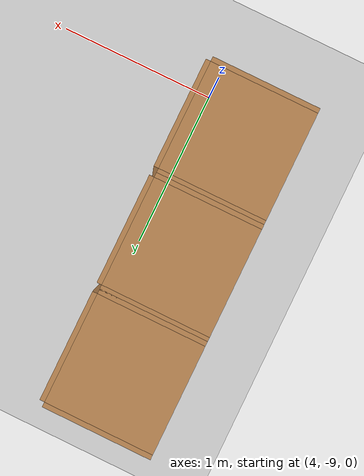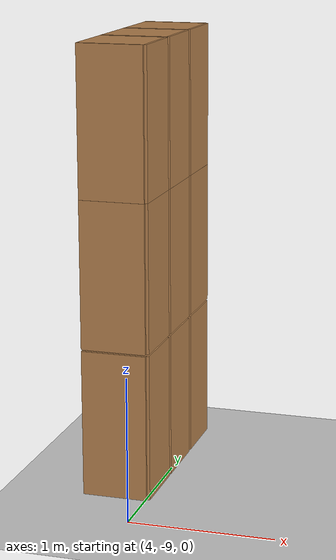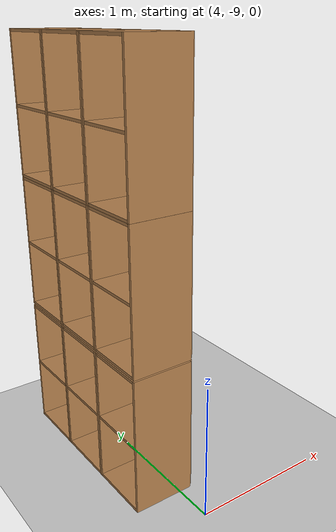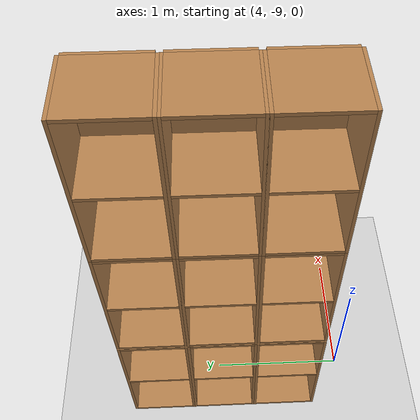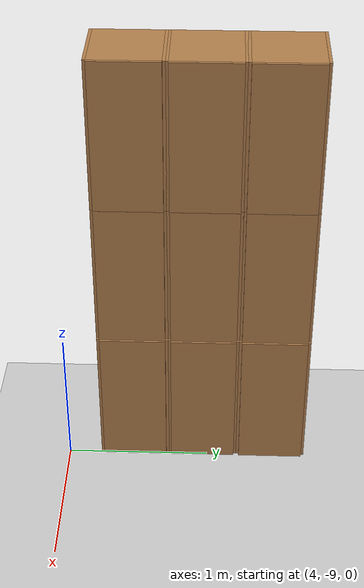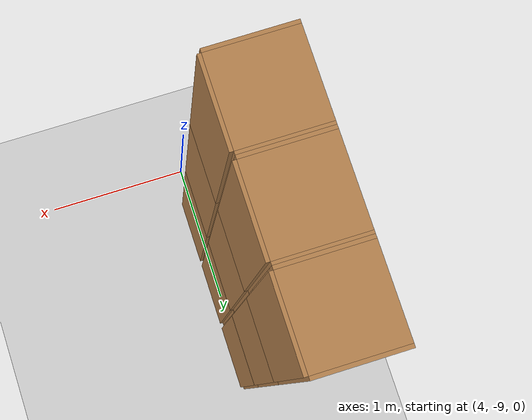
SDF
<sdf version="1.6">
 <world name="default">
  <model name="ground_plane">
   <static>1</static>
   <link name="link">
    <collision name="collision">
     <geometry><plane><normal>0 0 1</normal><size>100 100</size></plane></geometry>
     <surface>
      <contact><collide_bitmask>65535</collide_bitmask></contact>
      <friction><ode><mu>100</mu><mu2>50</mu2></ode></friction>
     </surface>
    </collision>
    <visual name="visual">
     <cast_shadows>0</cast_shadows>
     <geometry><plane><normal>0 0 1</normal><size>100 100</size></plane></geometry>
     <material>
      <script><uri>file://media/materials/scripts/gazebo.material</uri><name>Gazebo/Grey</name></script>
     </material>
    </visual>
   </link>
  </model>
  <model name="Locker18_clone">
   <model name="Locker18">
    <model name="Locker3">
     <model name="cabinet">
      <static>1</static>
      <link name="cabinet_bottom_plate">
       <inertial>
        <pose>0 0 -1 0 -0 0</pose>
        <inertia><ixx>2.05</ixx><ixy>0</ixy><ixz>0</ixz><iyy>2.05</iyy><iyz>0</iyz><izz>2.05</izz></inertia>
        <mass>25</mass>
       </inertial>
       <collision name="cabinet_bottom_plate_geom">
        <pose>0 0 0.01 0 -0 0</pose>
        <geometry><box><size>0.45 0.45 0.02</size></box></geometry>
       </collision>
       <visual name="cabinet_bottom_plate_geom_visual">
        <pose>0 0 0.01 0 -0 0</pose>
        <geometry><box><size>0.45 0.45 0.02</size></box></geometry>
        <material>
         <script><uri>file://media/materials/scripts/gazebo.material</uri><name>Gazebo/Wood</name></script>
        </material>
       </visual>
       <collision name="cabinet_bottom_plate_geom_cabinet_back_plate">
        <pose>0.235 0 0.51 0 -0 0</pose>
        <geometry><box><size>0.02 0.45 1.02</size></box></geometry>
       </collision>
       <visual name="cabinet_bottom_plate_geom_cabinet_back_plate_visual">
        <pose>0.235 0 0.51 0 -0 0</pose>
        <geometry><box><size>0.02 0.45 1.02</size></box></geometry>
        <material>
         <script><uri>file://media/materials/scripts/gazebo.material</uri><name>Gazebo/Wood</name></script>
        </material>
       </visual>
       <collision name="cabinet_bottom_plate_geom_cabinet_left_plate">
        <pose>0 0.235 0.51 0 -0 0</pose>
        <geometry><box><size>0.45 0.02 1.02</size></box></geometry>
       </collision>
       <visual name="cabinet_bottom_plate_geom_cabinet_left_plate_visual">
        <pose>0 0.235 0.51 0 -0 0</pose>
        <geometry><box><size>0.45 0.02 1.02</size></box></geometry>
        <material>
         <script><uri>file://media/materials/scripts/gazebo.material</uri><name>Gazebo/Wood</name></script>
        </material>
       </visual>
       <collision name="cabinet_bottom_plate_geom_cabinet_middle_plate">
        <pose>0 0 0.51 0 -0 0</pose>
        <geometry><box><size>0.45 0.45 0.02</size></box></geometry>
       </collision>
       <visual name="cabinet_bottom_plate_geom_cabinet_middle_plate_visual">
        <pose>0 0 0.51 0 -0 0</pose>
        <geometry><box><size>0.45 0.45 0.02</size></box></geometry>
        <material>
         <script><uri>file://media/materials/scripts/gazebo.material</uri><name>Gazebo/Wood</name></script>
        </material>
       </visual>
       <collision name="cabinet_bottom_plate_geom_cabinet_right_plate">
        <pose>0 -0.235 0.51 0 -0 0</pose>
        <geometry><box><size>0.45 0.02 1.02</size></box></geometry>
       </collision>
       <visual name="cabinet_bottom_plate_geom_cabinet_right_plate_visual">
        <pose>0 -0.235 0.51 0 -0 0</pose>
        <geometry><box><size>0.45 0.02 1.02</size></box></geometry>
        <material>
         <script><uri>file://media/materials/scripts/gazebo.material</uri><name>Gazebo/Wood</name></script>
        </material>
       </visual>
       <collision name="cabinet_bottom_plate_geom_cabinet_top_plate">
        <pose>0 0 1.01 0 -0 0</pose>
        <geometry><box><size>0.45 0.45 0.02</size></box></geometry>
       </collision>
       <visual name="cabinet_bottom_plate_geom_cabinet_top_plate_visual">
        <pose>0 0 1.01 0 -0 0</pose>
        <geometry><box><size>0.45 0.45 0.02</size></box></geometry>
        <material>
         <script><uri>file://media/materials/scripts/gazebo.material</uri><name>Gazebo/Wood</name></script>
        </material>
       </visual>
      </link>
      <pose>-0.676968 1.45758 0 0 -0 0</pose>
     </model>
     <model name="cabinet_clone">
      <static>1</static>
      <link name="cabinet_bottom_plate">
       <inertial>
        <pose>0 0 -1 0 -0 0</pose>
        <inertia><ixx>2.05</ixx><ixy>0</ixy><ixz>0</ixz><iyy>2.05</iyy><iyz>0</iyz><izz>2.05</izz></inertia>
        <mass>25</mass>
       </inertial>
       <collision name="cabinet_bottom_plate_geom">
        <pose>0 0 0.01 0 -0 0</pose>
        <geometry><box><size>0.45 0.45 0.02</size></box></geometry>
       </collision>
       <visual name="cabinet_bottom_plate_geom_visual">
        <pose>0 0 0.01 0 -0 0</pose>
        <geometry><box><size>0.45 0.45 0.02</size></box></geometry>
        <material>
         <script><uri>file://media/materials/scripts/gazebo.material</uri><name>Gazebo/Wood</name></script>
        </material>
       </visual>
       <collision name="cabinet_bottom_plate_geom_cabinet_back_plate">
        <pose>0.235 0 0.51 0 -0 0</pose>
        <geometry><box><size>0.02 0.45 1.02</size></box></geometry>
       </collision>
       <visual name="cabinet_bottom_plate_geom_cabinet_back_plate_visual">
        <pose>0.235 0 0.51 0 -0 0</pose>
        <geometry><box><size>0.02 0.45 1.02</size></box></geometry>
        <material>
         <script><uri>file://media/materials/scripts/gazebo.material</uri><name>Gazebo/Wood</name></script>
        </material>
       </visual>
       <collision name="cabinet_bottom_plate_geom_cabinet_left_plate">
        <pose>0 0.235 0.51 0 -0 0</pose>
        <geometry><box><size>0.45 0.02 1.02</size></box></geometry>
       </collision>
       <visual name="cabinet_bottom_plate_geom_cabinet_left_plate_visual">
        <pose>0 0.235 0.51 0 -0 0</pose>
        <geometry><box><size>0.45 0.02 1.02</size></box></geometry>
        <material>
         <script><uri>file://media/materials/scripts/gazebo.material</uri><name>Gazebo/Wood</name></script>
        </material>
       </visual>
       <collision name="cabinet_bottom_plate_geom_cabinet_middle_plate">
        <pose>0 0 0.51 0 -0 0</pose>
        <geometry><box><size>0.45 0.45 0.02</size></box></geometry>
       </collision>
       <visual name="cabinet_bottom_plate_geom_cabinet_middle_plate_visual">
        <pose>0 0 0.51 0 -0 0</pose>
        <geometry><box><size>0.45 0.45 0.02</size></box></geometry>
        <material>
         <script><uri>file://media/materials/scripts/gazebo.material</uri><name>Gazebo/Wood</name></script>
        </material>
       </visual>
       <collision name="cabinet_bottom_plate_geom_cabinet_right_plate">
        <pose>0 -0.235 0.51 0 -0 0</pose>
        <geometry><box><size>0.45 0.02 1.02</size></box></geometry>
       </collision>
       <visual name="cabinet_bottom_plate_geom_cabinet_right_plate_visual">
        <pose>0 -0.235 0.51 0 -0 0</pose>
        <geometry><box><size>0.45 0.02 1.02</size></box></geometry>
        <material>
         <script><uri>file://media/materials/scripts/gazebo.material</uri><name>Gazebo/Wood</name></script>
        </material>
       </visual>
       <collision name="cabinet_bottom_plate_geom_cabinet_top_plate">
        <pose>0 0 1.01 0 -0 0</pose>
        <geometry><box><size>0.45 0.45 0.02</size></box></geometry>
       </collision>
       <visual name="cabinet_bottom_plate_geom_cabinet_top_plate_visual">
        <pose>0 0 1.01 0 -0 0</pose>
        <geometry><box><size>0.45 0.45 0.02</size></box></geometry>
        <material>
         <script><uri>file://media/materials/scripts/gazebo.material</uri><name>Gazebo/Wood</name></script>
        </material>
       </visual>
      </link>
      <pose>-0.676968 0.970971 0 0 -0 0</pose>
     </model>
     <model name="cabinet_clone_0">
      <static>1</static>
      <link name="cabinet_bottom_plate">
       <inertial>
        <pose>0 0 -1 0 -0 0</pose>
        <inertia><ixx>2.05</ixx><ixy>0</ixy><ixz>0</ixz><iyy>2.05</iyy><iyz>0</iyz><izz>2.05</izz></inertia>
        <mass>25</mass>
       </inertial>
       <collision name="cabinet_bottom_plate_geom">
        <pose>0 0 0.01 0 -0 0</pose>
        <geometry><box><size>0.45 0.45 0.02</size></box></geometry>
       </collision>
       <visual name="cabinet_bottom_plate_geom_visual">
        <pose>0 0 0.01 0 -0 0</pose>
        <geometry><box><size>0.45 0.45 0.02</size></box></geometry>
        <material>
         <script><uri>file://media/materials/scripts/gazebo.material</uri><name>Gazebo/Wood</name></script>
        </material>
       </visual>
       <collision name="cabinet_bottom_plate_geom_cabinet_back_plate">
        <pose>0.235 0 0.51 0 -0 0</pose>
        <geometry><box><size>0.02 0.45 1.02</size></box></geometry>
       </collision>
       <visual name="cabinet_bottom_plate_geom_cabinet_back_plate_visual">
        <pose>0.235 0 0.51 0 -0 0</pose>
        <geometry><box><size>0.02 0.45 1.02</size></box></geometry>
        <material>
         <script><uri>file://media/materials/scripts/gazebo.material</uri><name>Gazebo/Wood</name></script>
        </material>
       </visual>
       <collision name="cabinet_bottom_plate_geom_cabinet_left_plate">
        <pose>0 0.235 0.51 0 -0 0</pose>
        <geometry><box><size>0.45 0.02 1.02</size></box></geometry>
       </collision>
       <visual name="cabinet_bottom_plate_geom_cabinet_left_plate_visual">
        <pose>0 0.235 0.51 0 -0 0</pose>
        <geometry><box><size>0.45 0.02 1.02</size></box></geometry>
        <material>
         <script><uri>file://media/materials/scripts/gazebo.material</uri><name>Gazebo/Wood</name></script>
        </material>
       </visual>
       <collision name="cabinet_bottom_plate_geom_cabinet_middle_plate">
        <pose>0 0 0.51 0 -0 0</pose>
        <geometry><box><size>0.45 0.45 0.02</size></box></geometry>
       </collision>
       <visual name="cabinet_bottom_plate_geom_cabinet_middle_plate_visual">
        <pose>0 0 0.51 0 -0 0</pose>
        <geometry><box><size>0.45 0.45 0.02</size></box></geometry>
        <material>
         <script><uri>file://media/materials/scripts/gazebo.material</uri><name>Gazebo/Wood</name></script>
        </material>
       </visual>
       <collision name="cabinet_bottom_plate_geom_cabinet_right_plate">
        <pose>0 -0.235 0.51 0 -0 0</pose>
        <geometry><box><size>0.45 0.02 1.02</size></box></geometry>
       </collision>
       <visual name="cabinet_bottom_plate_geom_cabinet_right_plate_visual">
        <pose>0 -0.235 0.51 0 -0 0</pose>
        <geometry><box><size>0.45 0.02 1.02</size></box></geometry>
        <material>
         <script><uri>file://media/materials/scripts/gazebo.material</uri><name>Gazebo/Wood</name></script>
        </material>
       </visual>
       <collision name="cabinet_bottom_plate_geom_cabinet_top_plate">
        <pose>0 0 1.01 0 -0 0</pose>
        <geometry><box><size>0.45 0.45 0.02</size></box></geometry>
       </collision>
       <visual name="cabinet_bottom_plate_geom_cabinet_top_plate_visual">
        <pose>0 0 1.01 0 -0 0</pose>
        <geometry><box><size>0.45 0.45 0.02</size></box></geometry>
        <material>
         <script><uri>file://media/materials/scripts/gazebo.material</uri><name>Gazebo/Wood</name></script>
        </material>
       </visual>
      </link>
      <pose>-0.676968 0.48391 0 0 -0 0</pose>
     </model>
     <static>0</static>
     <pose>0 3e-06 -1.02763 0 -0 0</pose>
    </model>
    <model name="Locker3_clone">
     <model name="cabinet">
      <static>1</static>
      <link name="cabinet_bottom_plate">
       <inertial>
        <pose>0 0 -1 0 -0 0</pose>
        <inertia><ixx>2.05</ixx><ixy>0</ixy><ixz>0</ixz><iyy>2.05</iyy><iyz>0</iyz><izz>2.05</izz></inertia>
        <mass>25</mass>
       </inertial>
       <collision name="cabinet_bottom_plate_geom">
        <pose>0 0 0.01 0 -0 0</pose>
        <geometry><box><size>0.45 0.45 0.02</size></box></geometry>
       </collision>
       <visual name="cabinet_bottom_plate_geom_visual">
        <pose>0 0 0.01 0 -0 0</pose>
        <geometry><box><size>0.45 0.45 0.02</size></box></geometry>
        <material>
         <script><uri>file://media/materials/scripts/gazebo.material</uri><name>Gazebo/Wood</name></script>
        </material>
       </visual>
       <collision name="cabinet_bottom_plate_geom_cabinet_back_plate">
        <pose>0.235 0 0.51 0 -0 0</pose>
        <geometry><box><size>0.02 0.45 1.02</size></box></geometry>
       </collision>
       <visual name="cabinet_bottom_plate_geom_cabinet_back_plate_visual">
        <pose>0.235 0 0.51 0 -0 0</pose>
        <geometry><box><size>0.02 0.45 1.02</size></box></geometry>
        <material>
         <script><uri>file://media/materials/scripts/gazebo.material</uri><name>Gazebo/Wood</name></script>
        </material>
       </visual>
       <collision name="cabinet_bottom_plate_geom_cabinet_left_plate">
        <pose>0 0.235 0.51 0 -0 0</pose>
        <geometry><box><size>0.45 0.02 1.02</size></box></geometry>
       </collision>
       <visual name="cabinet_bottom_plate_geom_cabinet_left_plate_visual">
        <pose>0 0.235 0.51 0 -0 0</pose>
        <geometry><box><size>0.45 0.02 1.02</size></box></geometry>
        <material>
         <script><uri>file://media/materials/scripts/gazebo.material</uri><name>Gazebo/Wood</name></script>
        </material>
       </visual>
       <collision name="cabinet_bottom_plate_geom_cabinet_middle_plate">
        <pose>0 0 0.51 0 -0 0</pose>
        <geometry><box><size>0.45 0.45 0.02</size></box></geometry>
       </collision>
       <visual name="cabinet_bottom_plate_geom_cabinet_middle_plate_visual">
        <pose>0 0 0.51 0 -0 0</pose>
        <geometry><box><size>0.45 0.45 0.02</size></box></geometry>
        <material>
         <script><uri>file://media/materials/scripts/gazebo.material</uri><name>Gazebo/Wood</name></script>
        </material>
       </visual>
       <collision name="cabinet_bottom_plate_geom_cabinet_right_plate">
        <pose>0 -0.235 0.51 0 -0 0</pose>
        <geometry><box><size>0.45 0.02 1.02</size></box></geometry>
       </collision>
       <visual name="cabinet_bottom_plate_geom_cabinet_right_plate_visual">
        <pose>0 -0.235 0.51 0 -0 0</pose>
        <geometry><box><size>0.45 0.02 1.02</size></box></geometry>
        <material>
         <script><uri>file://media/materials/scripts/gazebo.material</uri><name>Gazebo/Wood</name></script>
        </material>
       </visual>
       <collision name="cabinet_bottom_plate_geom_cabinet_top_plate">
        <pose>0 0 1.01 0 -0 0</pose>
        <geometry><box><size>0.45 0.45 0.02</size></box></geometry>
       </collision>
       <visual name="cabinet_bottom_plate_geom_cabinet_top_plate_visual">
        <pose>0 0 1.01 0 -0 0</pose>
        <geometry><box><size>0.45 0.45 0.02</size></box></geometry>
        <material>
         <script><uri>file://media/materials/scripts/gazebo.material</uri><name>Gazebo/Wood</name></script>
        </material>
       </visual>
      </link>
      <pose>-0.676968 1.45758 0 0 -0 0</pose>
     </model>
     <model name="cabinet_clone">
      <static>1</static>
      <link name="cabinet_bottom_plate">
       <inertial>
        <pose>0 0 -1 0 -0 0</pose>
        <inertia><ixx>2.05</ixx><ixy>0</ixy><ixz>0</ixz><iyy>2.05</iyy><iyz>0</iyz><izz>2.05</izz></inertia>
        <mass>25</mass>
       </inertial>
       <collision name="cabinet_bottom_plate_geom">
        <pose>0 0 0.01 0 -0 0</pose>
        <geometry><box><size>0.45 0.45 0.02</size></box></geometry>
       </collision>
       <visual name="cabinet_bottom_plate_geom_visual">
        <pose>0 0 0.01 0 -0 0</pose>
        <geometry><box><size>0.45 0.45 0.02</size></box></geometry>
        <material>
         <script><uri>file://media/materials/scripts/gazebo.material</uri><name>Gazebo/Wood</name></script>
        </material>
       </visual>
       <collision name="cabinet_bottom_plate_geom_cabinet_back_plate">
        <pose>0.235 0 0.51 0 -0 0</pose>
        <geometry><box><size>0.02 0.45 1.02</size></box></geometry>
       </collision>
       <visual name="cabinet_bottom_plate_geom_cabinet_back_plate_visual">
        <pose>0.235 0 0.51 0 -0 0</pose>
        <geometry><box><size>0.02 0.45 1.02</size></box></geometry>
        <material>
         <script><uri>file://media/materials/scripts/gazebo.material</uri><name>Gazebo/Wood</name></script>
        </material>
       </visual>
       <collision name="cabinet_bottom_plate_geom_cabinet_left_plate">
        <pose>0 0.235 0.51 0 -0 0</pose>
        <geometry><box><size>0.45 0.02 1.02</size></box></geometry>
       </collision>
       <visual name="cabinet_bottom_plate_geom_cabinet_left_plate_visual">
        <pose>0 0.235 0.51 0 -0 0</pose>
        <geometry><box><size>0.45 0.02 1.02</size></box></geometry>
        <material>
         <script><uri>file://media/materials/scripts/gazebo.material</uri><name>Gazebo/Wood</name></script>
        </material>
       </visual>
       <collision name="cabinet_bottom_plate_geom_cabinet_middle_plate">
        <pose>0 0 0.51 0 -0 0</pose>
        <geometry><box><size>0.45 0.45 0.02</size></box></geometry>
       </collision>
       <visual name="cabinet_bottom_plate_geom_cabinet_middle_plate_visual">
        <pose>0 0 0.51 0 -0 0</pose>
        <geometry><box><size>0.45 0.45 0.02</size></box></geometry>
        <material>
         <script><uri>file://media/materials/scripts/gazebo.material</uri><name>Gazebo/Wood</name></script>
        </material>
       </visual>
       <collision name="cabinet_bottom_plate_geom_cabinet_right_plate">
        <pose>0 -0.235 0.51 0 -0 0</pose>
        <geometry><box><size>0.45 0.02 1.02</size></box></geometry>
       </collision>
       <visual name="cabinet_bottom_plate_geom_cabinet_right_plate_visual">
        <pose>0 -0.235 0.51 0 -0 0</pose>
        <geometry><box><size>0.45 0.02 1.02</size></box></geometry>
        <material>
         <script><uri>file://media/materials/scripts/gazebo.material</uri><name>Gazebo/Wood</name></script>
        </material>
       </visual>
       <collision name="cabinet_bottom_plate_geom_cabinet_top_plate">
        <pose>0 0 1.01 0 -0 0</pose>
        <geometry><box><size>0.45 0.45 0.02</size></box></geometry>
       </collision>
       <visual name="cabinet_bottom_plate_geom_cabinet_top_plate_visual">
        <pose>0 0 1.01 0 -0 0</pose>
        <geometry><box><size>0.45 0.45 0.02</size></box></geometry>
        <material>
         <script><uri>file://media/materials/scripts/gazebo.material</uri><name>Gazebo/Wood</name></script>
        </material>
       </visual>
      </link>
      <pose>-0.676968 0.970971 0 0 -0 0</pose>
     </model>
     <model name="cabinet_clone_0">
      <static>1</static>
      <link name="cabinet_bottom_plate">
       <inertial>
        <pose>0 0 -1 0 -0 0</pose>
        <inertia><ixx>2.05</ixx><ixy>0</ixy><ixz>0</ixz><iyy>2.05</iyy><iyz>0</iyz><izz>2.05</izz></inertia>
        <mass>25</mass>
       </inertial>
       <collision name="cabinet_bottom_plate_geom">
        <pose>0 0 0.01 0 -0 0</pose>
        <geometry><box><size>0.45 0.45 0.02</size></box></geometry>
       </collision>
       <visual name="cabinet_bottom_plate_geom_visual">
        <pose>0 0 0.01 0 -0 0</pose>
        <geometry><box><size>0.45 0.45 0.02</size></box></geometry>
        <material>
         <script><uri>file://media/materials/scripts/gazebo.material</uri><name>Gazebo/Wood</name></script>
        </material>
       </visual>
       <collision name="cabinet_bottom_plate_geom_cabinet_back_plate">
        <pose>0.235 0 0.51 0 -0 0</pose>
        <geometry><box><size>0.02 0.45 1.02</size></box></geometry>
       </collision>
       <visual name="cabinet_bottom_plate_geom_cabinet_back_plate_visual">
        <pose>0.235 0 0.51 0 -0 0</pose>
        <geometry><box><size>0.02 0.45 1.02</size></box></geometry>
        <material>
         <script><uri>file://media/materials/scripts/gazebo.material</uri><name>Gazebo/Wood</name></script>
        </material>
       </visual>
       <collision name="cabinet_bottom_plate_geom_cabinet_left_plate">
        <pose>0 0.235 0.51 0 -0 0</pose>
        <geometry><box><size>0.45 0.02 1.02</size></box></geometry>
       </collision>
       <visual name="cabinet_bottom_plate_geom_cabinet_left_plate_visual">
        <pose>0 0.235 0.51 0 -0 0</pose>
        <geometry><box><size>0.45 0.02 1.02</size></box></geometry>
        <material>
         <script><uri>file://media/materials/scripts/gazebo.material</uri><name>Gazebo/Wood</name></script>
        </material>
       </visual>
       <collision name="cabinet_bottom_plate_geom_cabinet_middle_plate">
        <pose>0 0 0.51 0 -0 0</pose>
        <geometry><box><size>0.45 0.45 0.02</size></box></geometry>
       </collision>
       <visual name="cabinet_bottom_plate_geom_cabinet_middle_plate_visual">
        <pose>0 0 0.51 0 -0 0</pose>
        <geometry><box><size>0.45 0.45 0.02</size></box></geometry>
        <material>
         <script><uri>file://media/materials/scripts/gazebo.material</uri><name>Gazebo/Wood</name></script>
        </material>
       </visual>
       <collision name="cabinet_bottom_plate_geom_cabinet_right_plate">
        <pose>0 -0.235 0.51 0 -0 0</pose>
        <geometry><box><size>0.45 0.02 1.02</size></box></geometry>
       </collision>
       <visual name="cabinet_bottom_plate_geom_cabinet_right_plate_visual">
        <pose>0 -0.235 0.51 0 -0 0</pose>
        <geometry><box><size>0.45 0.02 1.02</size></box></geometry>
        <material>
         <script><uri>file://media/materials/scripts/gazebo.material</uri><name>Gazebo/Wood</name></script>
        </material>
       </visual>
       <collision name="cabinet_bottom_plate_geom_cabinet_top_plate">
        <pose>0 0 1.01 0 -0 0</pose>
        <geometry><box><size>0.45 0.45 0.02</size></box></geometry>
       </collision>
       <visual name="cabinet_bottom_plate_geom_cabinet_top_plate_visual">
        <pose>0 0 1.01 0 -0 0</pose>
        <geometry><box><size>0.45 0.45 0.02</size></box></geometry>
        <material>
         <script><uri>file://media/materials/scripts/gazebo.material</uri><name>Gazebo/Wood</name></script>
        </material>
       </visual>
      </link>
      <pose>-0.676968 0.48391 0 0 -0 0</pose>
     </model>
     <static>0</static>
     <pose>0 3e-06 0.003717 0 -0 0</pose>
    </model>
    <model name="Locker3_clone_clone">
     <model name="cabinet">
      <static>1</static>
      <link name="cabinet_bottom_plate">
       <inertial>
        <pose>0 0 -1 0 -0 0</pose>
        <inertia><ixx>2.05</ixx><ixy>0</ixy><ixz>0</ixz><iyy>2.05</iyy><iyz>0</iyz><izz>2.05</izz></inertia>
        <mass>25</mass>
       </inertial>
       <collision name="cabinet_bottom_plate_geom">
        <pose>0 0 0.01 0 -0 0</pose>
        <geometry><box><size>0.45 0.45 0.02</size></box></geometry>
       </collision>
       <visual name="cabinet_bottom_plate_geom_visual">
        <pose>0 0 0.01 0 -0 0</pose>
        <geometry><box><size>0.45 0.45 0.02</size></box></geometry>
        <material>
         <script><uri>file://media/materials/scripts/gazebo.material</uri><name>Gazebo/Wood</name></script>
        </material>
       </visual>
       <collision name="cabinet_bottom_plate_geom_cabinet_back_plate">
        <pose>0.235 0 0.51 0 -0 0</pose>
        <geometry><box><size>0.02 0.45 1.02</size></box></geometry>
       </collision>
       <visual name="cabinet_bottom_plate_geom_cabinet_back_plate_visual">
        <pose>0.235 0 0.51 0 -0 0</pose>
        <geometry><box><size>0.02 0.45 1.02</size></box></geometry>
        <material>
         <script><uri>file://media/materials/scripts/gazebo.material</uri><name>Gazebo/Wood</name></script>
        </material>
       </visual>
       <collision name="cabinet_bottom_plate_geom_cabinet_left_plate">
        <pose>0 0.235 0.51 0 -0 0</pose>
        <geometry><box><size>0.45 0.02 1.02</size></box></geometry>
       </collision>
       <visual name="cabinet_bottom_plate_geom_cabinet_left_plate_visual">
        <pose>0 0.235 0.51 0 -0 0</pose>
        <geometry><box><size>0.45 0.02 1.02</size></box></geometry>
        <material>
         <script><uri>file://media/materials/scripts/gazebo.material</uri><name>Gazebo/Wood</name></script>
        </material>
       </visual>
       <collision name="cabinet_bottom_plate_geom_cabinet_middle_plate">
        <pose>0 0 0.51 0 -0 0</pose>
        <geometry><box><size>0.45 0.45 0.02</size></box></geometry>
       </collision>
       <visual name="cabinet_bottom_plate_geom_cabinet_middle_plate_visual">
        <pose>0 0 0.51 0 -0 0</pose>
        <geometry><box><size>0.45 0.45 0.02</size></box></geometry>
        <material>
         <script><uri>file://media/materials/scripts/gazebo.material</uri><name>Gazebo/Wood</name></script>
        </material>
       </visual>
       <collision name="cabinet_bottom_plate_geom_cabinet_right_plate">
        <pose>0 -0.235 0.51 0 -0 0</pose>
        <geometry><box><size>0.45 0.02 1.02</size></box></geometry>
       </collision>
       <visual name="cabinet_bottom_plate_geom_cabinet_right_plate_visual">
        <pose>0 -0.235 0.51 0 -0 0</pose>
        <geometry><box><size>0.45 0.02 1.02</size></box></geometry>
        <material>
         <script><uri>file://media/materials/scripts/gazebo.material</uri><name>Gazebo/Wood</name></script>
        </material>
       </visual>
       <collision name="cabinet_bottom_plate_geom_cabinet_top_plate">
        <pose>0 0 1.01 0 -0 0</pose>
        <geometry><box><size>0.45 0.45 0.02</size></box></geometry>
       </collision>
       <visual name="cabinet_bottom_plate_geom_cabinet_top_plate_visual">
        <pose>0 0 1.01 0 -0 0</pose>
        <geometry><box><size>0.45 0.45 0.02</size></box></geometry>
        <material>
         <script><uri>file://media/materials/scripts/gazebo.material</uri><name>Gazebo/Wood</name></script>
        </material>
       </visual>
      </link>
      <pose>-0.676968 1.45758 0 0 -0 0</pose>
     </model>
     <model name="cabinet_clone">
      <static>1</static>
      <link name="cabinet_bottom_plate">
       <inertial>
        <pose>0 0 -1 0 -0 0</pose>
        <inertia><ixx>2.05</ixx><ixy>0</ixy><ixz>0</ixz><iyy>2.05</iyy><iyz>0</iyz><izz>2.05</izz></inertia>
        <mass>25</mass>
       </inertial>
       <collision name="cabinet_bottom_plate_geom">
        <pose>0 0 0.01 0 -0 0</pose>
        <geometry><box><size>0.45 0.45 0.02</size></box></geometry>
       </collision>
       <visual name="cabinet_bottom_plate_geom_visual">
        <pose>0 0 0.01 0 -0 0</pose>
        <geometry><box><size>0.45 0.45 0.02</size></box></geometry>
        <material>
         <script><uri>file://media/materials/scripts/gazebo.material</uri><name>Gazebo/Wood</name></script>
        </material>
       </visual>
       <collision name="cabinet_bottom_plate_geom_cabinet_back_plate">
        <pose>0.235 0 0.51 0 -0 0</pose>
        <geometry><box><size>0.02 0.45 1.02</size></box></geometry>
       </collision>
       <visual name="cabinet_bottom_plate_geom_cabinet_back_plate_visual">
        <pose>0.235 0 0.51 0 -0 0</pose>
        <geometry><box><size>0.02 0.45 1.02</size></box></geometry>
        <material>
         <script><uri>file://media/materials/scripts/gazebo.material</uri><name>Gazebo/Wood</name></script>
        </material>
       </visual>
       <collision name="cabinet_bottom_plate_geom_cabinet_left_plate">
        <pose>0 0.235 0.51 0 -0 0</pose>
        <geometry><box><size>0.45 0.02 1.02</size></box></geometry>
       </collision>
       <visual name="cabinet_bottom_plate_geom_cabinet_left_plate_visual">
        <pose>0 0.235 0.51 0 -0 0</pose>
        <geometry><box><size>0.45 0.02 1.02</size></box></geometry>
        <material>
         <script><uri>file://media/materials/scripts/gazebo.material</uri><name>Gazebo/Wood</name></script>
        </material>
       </visual>
       <collision name="cabinet_bottom_plate_geom_cabinet_middle_plate">
        <pose>0 0 0.51 0 -0 0</pose>
        <geometry><box><size>0.45 0.45 0.02</size></box></geometry>
       </collision>
       <visual name="cabinet_bottom_plate_geom_cabinet_middle_plate_visual">
        <pose>0 0 0.51 0 -0 0</pose>
        <geometry><box><size>0.45 0.45 0.02</size></box></geometry>
        <material>
         <script><uri>file://media/materials/scripts/gazebo.material</uri><name>Gazebo/Wood</name></script>
        </material>
       </visual>
       <collision name="cabinet_bottom_plate_geom_cabinet_right_plate">
        <pose>0 -0.235 0.51 0 -0 0</pose>
        <geometry><box><size>0.45 0.02 1.02</size></box></geometry>
       </collision>
       <visual name="cabinet_bottom_plate_geom_cabinet_right_plate_visual">
        <pose>0 -0.235 0.51 0 -0 0</pose>
        <geometry><box><size>0.45 0.02 1.02</size></box></geometry>
        <material>
         <script><uri>file://media/materials/scripts/gazebo.material</uri><name>Gazebo/Wood</name></script>
        </material>
       </visual>
       <collision name="cabinet_bottom_plate_geom_cabinet_top_plate">
        <pose>0 0 1.01 0 -0 0</pose>
        <geometry><box><size>0.45 0.45 0.02</size></box></geometry>
       </collision>
       <visual name="cabinet_bottom_plate_geom_cabinet_top_plate_visual">
        <pose>0 0 1.01 0 -0 0</pose>
        <geometry><box><size>0.45 0.45 0.02</size></box></geometry>
        <material>
         <script><uri>file://media/materials/scripts/gazebo.material</uri><name>Gazebo/Wood</name></script>
        </material>
       </visual>
      </link>
      <pose>-0.676968 0.970971 0 0 -0 0</pose>
     </model>
     <model name="cabinet_clone_0">
      <static>1</static>
      <link name="cabinet_bottom_plate">
       <inertial>
        <pose>0 0 -1 0 -0 0</pose>
        <inertia><ixx>2.05</ixx><ixy>0</ixy><ixz>0</ixz><iyy>2.05</iyy><iyz>0</iyz><izz>2.05</izz></inertia>
        <mass>25</mass>
       </inertial>
       <collision name="cabinet_bottom_plate_geom">
        <pose>0 0 0.01 0 -0 0</pose>
        <geometry><box><size>0.45 0.45 0.02</size></box></geometry>
       </collision>
       <visual name="cabinet_bottom_plate_geom_visual">
        <pose>0 0 0.01 0 -0 0</pose>
        <geometry><box><size>0.45 0.45 0.02</size></box></geometry>
        <material>
         <script><uri>file://media/materials/scripts/gazebo.material</uri><name>Gazebo/Wood</name></script>
        </material>
       </visual>
       <collision name="cabinet_bottom_plate_geom_cabinet_back_plate">
        <pose>0.235 0 0.51 0 -0 0</pose>
        <geometry><box><size>0.02 0.45 1.02</size></box></geometry>
       </collision>
       <visual name="cabinet_bottom_plate_geom_cabinet_back_plate_visual">
        <pose>0.235 0 0.51 0 -0 0</pose>
        <geometry><box><size>0.02 0.45 1.02</size></box></geometry>
        <material>
         <script><uri>file://media/materials/scripts/gazebo.material</uri><name>Gazebo/Wood</name></script>
        </material>
       </visual>
       <collision name="cabinet_bottom_plate_geom_cabinet_left_plate">
        <pose>0 0.235 0.51 0 -0 0</pose>
        <geometry><box><size>0.45 0.02 1.02</size></box></geometry>
       </collision>
       <visual name="cabinet_bottom_plate_geom_cabinet_left_plate_visual">
        <pose>0 0.235 0.51 0 -0 0</pose>
        <geometry><box><size>0.45 0.02 1.02</size></box></geometry>
        <material>
         <script><uri>file://media/materials/scripts/gazebo.material</uri><name>Gazebo/Wood</name></script>
        </material>
       </visual>
       <collision name="cabinet_bottom_plate_geom_cabinet_middle_plate">
        <pose>0 0 0.51 0 -0 0</pose>
        <geometry><box><size>0.45 0.45 0.02</size></box></geometry>
       </collision>
       <visual name="cabinet_bottom_plate_geom_cabinet_middle_plate_visual">
        <pose>0 0 0.51 0 -0 0</pose>
        <geometry><box><size>0.45 0.45 0.02</size></box></geometry>
        <material>
         <script><uri>file://media/materials/scripts/gazebo.material</uri><name>Gazebo/Wood</name></script>
        </material>
       </visual>
       <collision name="cabinet_bottom_plate_geom_cabinet_right_plate">
        <pose>0 -0.235 0.51 0 -0 0</pose>
        <geometry><box><size>0.45 0.02 1.02</size></box></geometry>
       </collision>
       <visual name="cabinet_bottom_plate_geom_cabinet_right_plate_visual">
        <pose>0 -0.235 0.51 0 -0 0</pose>
        <geometry><box><size>0.45 0.02 1.02</size></box></geometry>
        <material>
         <script><uri>file://media/materials/scripts/gazebo.material</uri><name>Gazebo/Wood</name></script>
        </material>
       </visual>
       <collision name="cabinet_bottom_plate_geom_cabinet_top_plate">
        <pose>0 0 1.01 0 -0 0</pose>
        <geometry><box><size>0.45 0.45 0.02</size></box></geometry>
       </collision>
       <visual name="cabinet_bottom_plate_geom_cabinet_top_plate_visual">
        <pose>0 0 1.01 0 -0 0</pose>
        <geometry><box><size>0.45 0.45 0.02</size></box></geometry>
        <material>
         <script><uri>file://media/materials/scripts/gazebo.material</uri><name>Gazebo/Wood</name></script>
        </material>
       </visual>
      </link>
      <pose>-0.676968 0.48391 0 0 -0 0</pose>
     </model>
     <static>0</static>
     <pose>0 3e-06 1.02391 0 -0 0</pose>
    </model>
    <static>0</static>
    <pose>-0 4e-06 4e-06 0 -0 0</pose>
   </model>
   <static>0</static>
   <pose>4.50277 -9.00053 1.08672 0 -0 0</pose>
  </model>
 </world>
</sdf>
